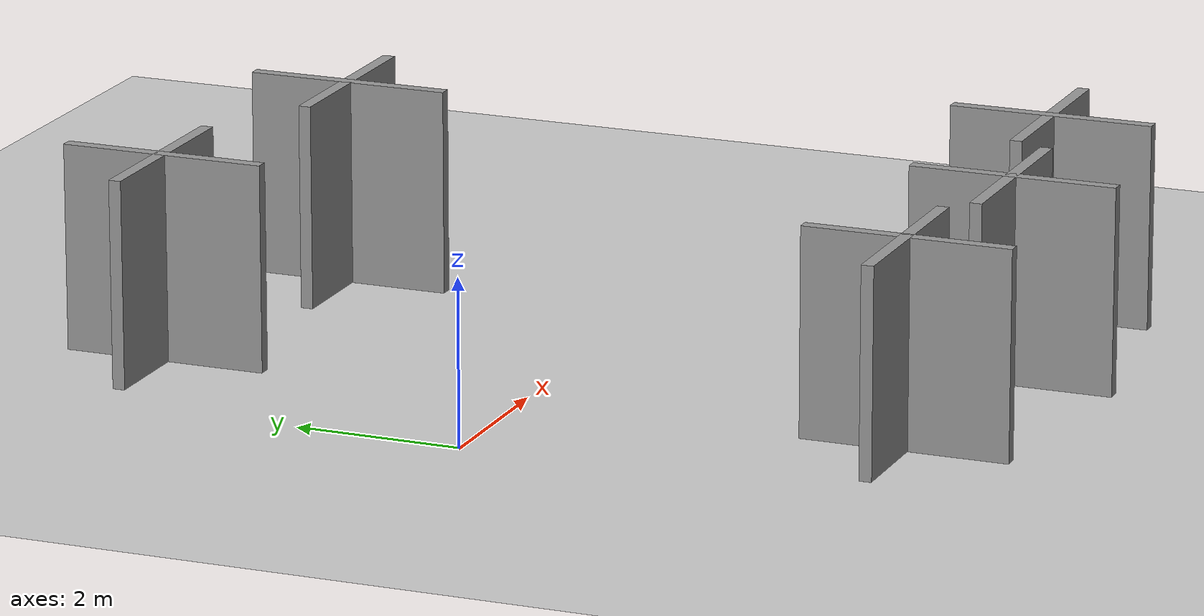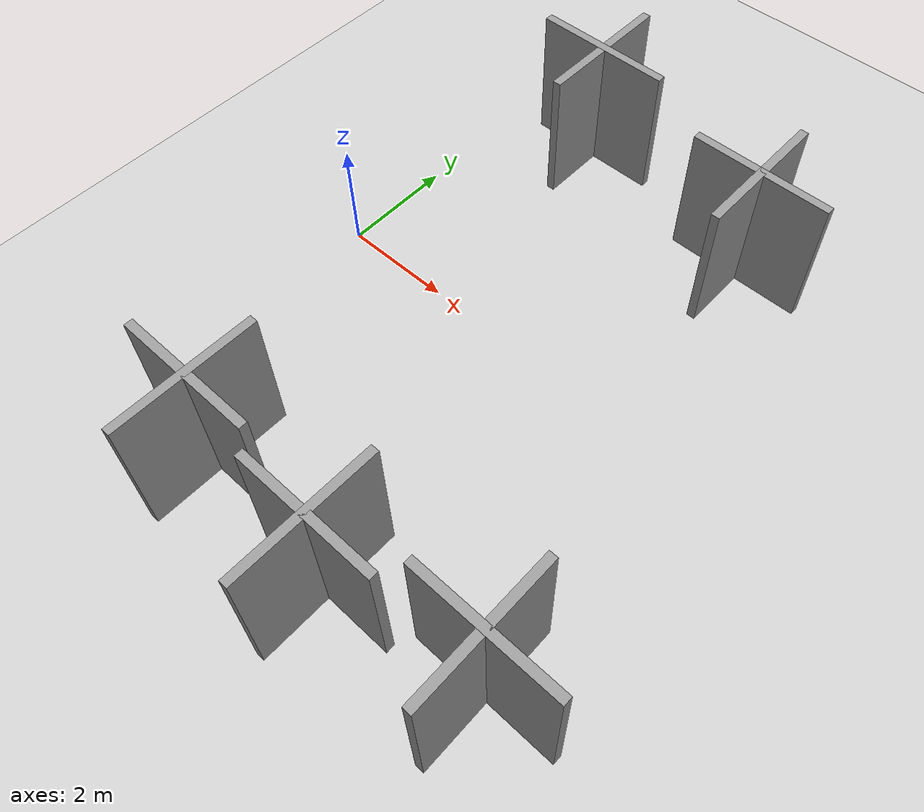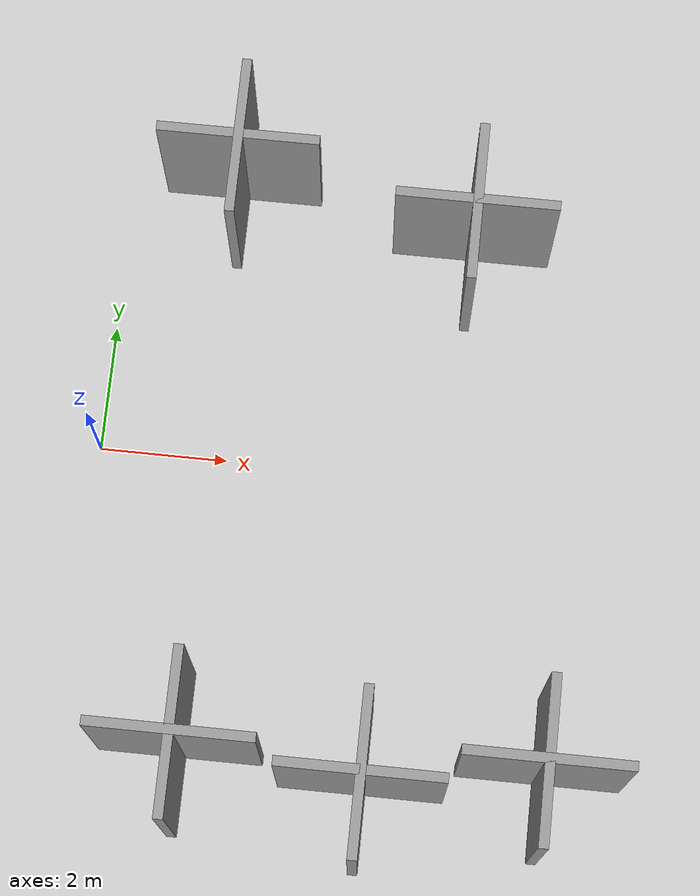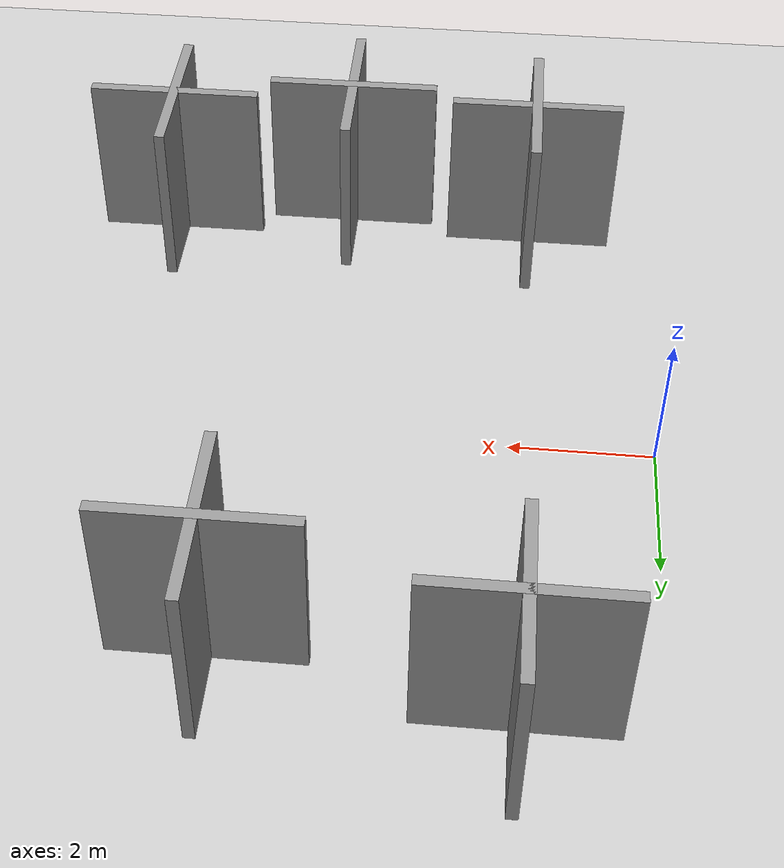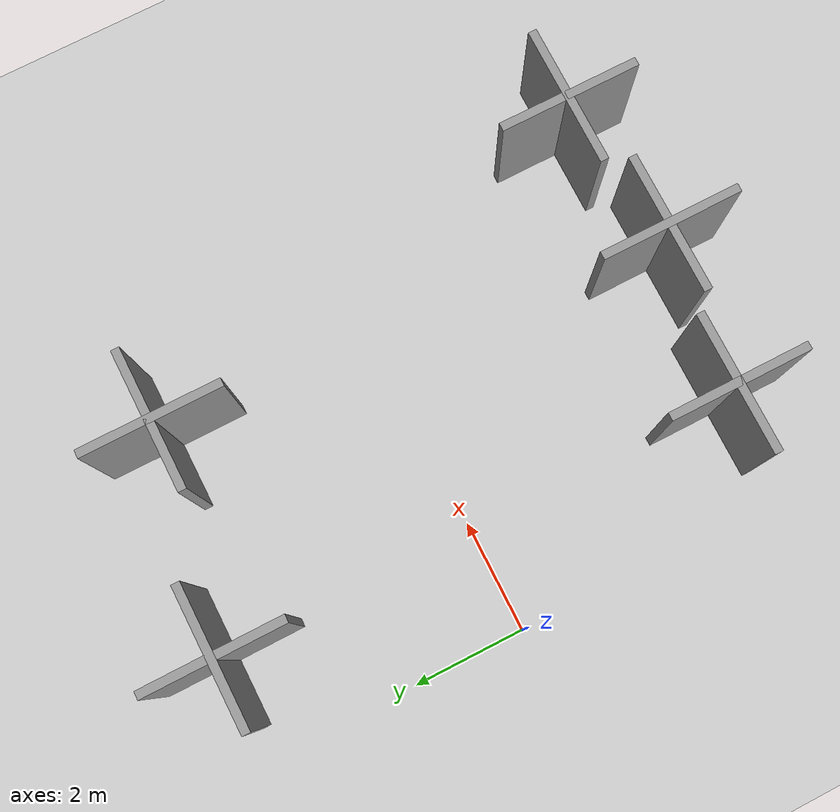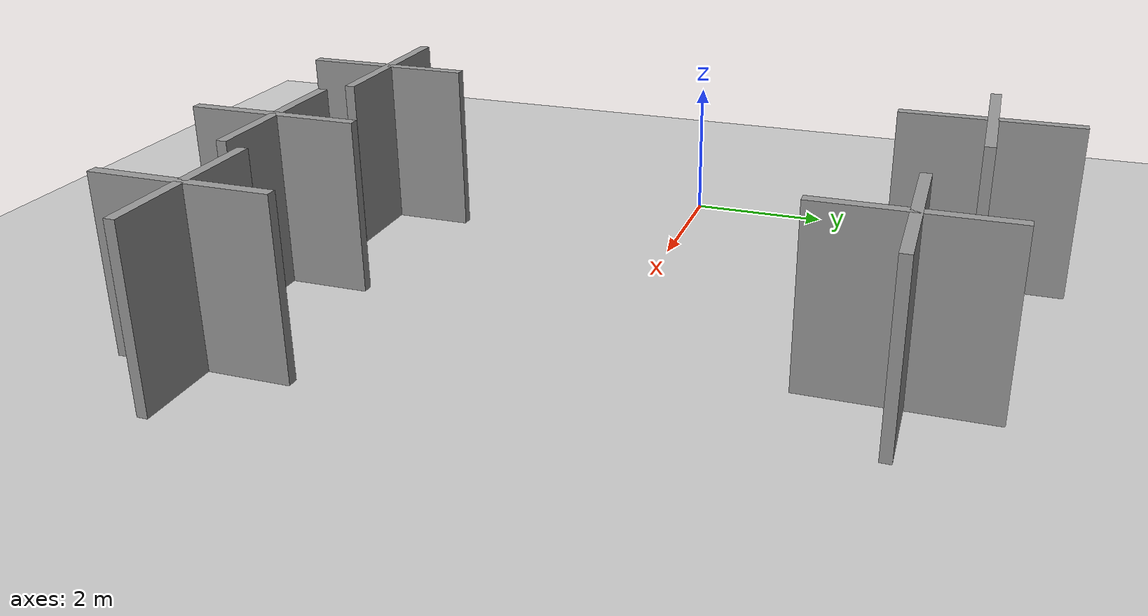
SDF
<sdf version="1.6">
 <world name="default">
  <light name="sun" type="directional">
   <pose>0 0 10 0 -0 0</pose>
   <diffuse>0.8 0.8 0.8 1</diffuse>
   <specular>0.2 0.2 0.2 1</specular>
   <attenuation>
    <range>1000</range>
    <constant>0.9</constant>
    <linear>0.01</linear>
    <quadratic>0.001</quadratic>
   </attenuation>
   <direction>-0.5 0.1 -0.9</direction>
  </light>
  <model name="ground_plane">
   <static>1</static>
   <link name="link">
    <collision name="collision">
     <geometry><plane><normal>0 0 1</normal><size>100 100</size></plane></geometry>
     <surface><friction><ode><mu>100</mu><mu2>50</mu2></ode></friction></surface>
    </collision>
    <visual name="visual">
     <cast_shadows>0</cast_shadows>
     <geometry><plane><normal>0 0 1</normal><size>100 100</size></plane></geometry>
     <material>
      <script><uri>file://media/materials/scripts/gazebo.material</uri><name>Gazebo/Grey</name></script>
     </material>
    </visual>
   </link>
  </model>
  <gravity>0 0 -9.8</gravity>
  <magnetic_field>6e-06 2.3e-05 -4.2e-05</magnetic_field>
  <atmosphere type="adiabatic"/>
  <physics name="default_physics" default="0" type="ode">
   <max_step_size>0.001</max_step_size>
   <real_time_factor>1</real_time_factor>
   <real_time_update_rate>1000</real_time_update_rate>
  </physics>
  <scene><ambient>0.4 0.4 0.4 1</ambient><background>0.7 0.7 0.7 1</background><shadows>1</shadows></scene>
  <audio><device>default</device></audio>
  <spherical_coordinates>
   <surface_model>EARTH_WGS84</surface_model>
   <latitude_deg>0</latitude_deg>
   <longitude_deg>0</longitude_deg>
   <elevation>0</elevation>
   <heading_deg>0</heading_deg>
  </spherical_coordinates>
  <model name="ten_number">
   <pose>5.50893 3.77277 0 0 -0 0</pose>
   <link name="Wall_26">
    <collision name="Wall_26_Collision">
     <geometry><box><size>2.5 0.15 2.5</size></box></geometry>
     <pose>0 0 1.25 0 -0 0</pose>
    </collision>
    <visual name="Wall_26_Visual">
     <pose>0 0 1.25 0 -0 0</pose>
     <geometry><box><size>2.5 0.15 2.5</size></box></geometry>
     <material>
      <script><uri>file://media/materials/scripts/gazebo.material</uri><name>Gazebo/Grey</name></script>
      <ambient>1 1 1 1</ambient>
     </material>
     <meta><layer>0</layer></meta>
    </visual>
    <pose>0 0.025001 0 0 -0 0</pose>
   </link>
   <link name="Wall_28">
    <collision name="Wall_28_Collision">
     <geometry><box><size>2.5 0.15 2.5</size></box></geometry>
     <pose>0 0 1.25 0 -0 0</pose>
    </collision>
    <visual name="Wall_28_Visual">
     <pose>0 0 1.25 0 -0 0</pose>
     <geometry><box><size>2.5 0.15 2.5</size></box></geometry>
     <material>
      <script><uri>file://media/materials/scripts/gazebo.material</uri><name>Gazebo/Grey</name></script>
      <ambient>1 1 1 1</ambient>
     </material>
     <meta><layer>0</layer></meta>
    </visual>
    <pose>0.005 0 0 0 -0 -1.5708</pose>
   </link>
   <static>1</static>
  </model>
  <model name="ten_number_0">
   <pose>1.78537 4.47021 0 0 -0 0</pose>
   <link name="Wall_26">
    <collision name="Wall_26_Collision">
     <geometry><box><size>2.5 0.15 2.5</size></box></geometry>
     <pose>0 0 1.25 0 -0 0</pose>
    </collision>
    <visual name="Wall_26_Visual">
     <pose>0 0 1.25 0 -0 0</pose>
     <geometry><box><size>2.5 0.15 2.5</size></box></geometry>
     <material>
      <script><uri>file://media/materials/scripts/gazebo.material</uri><name>Gazebo/Grey</name></script>
      <ambient>1 1 1 1</ambient>
     </material>
     <meta><layer>0</layer></meta>
    </visual>
    <pose>0 0.025001 0 0 -0 0</pose>
   </link>
   <link name="Wall_28">
    <collision name="Wall_28_Collision">
     <geometry><box><size>2.5 0.15 2.5</size></box></geometry>
     <pose>0 0 1.25 0 -0 0</pose>
    </collision>
    <visual name="Wall_28_Visual">
     <pose>0 0 1.25 0 -0 0</pose>
     <geometry><box><size>2.5 0.15 2.5</size></box></geometry>
     <material>
      <script><uri>file://media/materials/scripts/gazebo.material</uri><name>Gazebo/Grey</name></script>
      <ambient>1 1 1 1</ambient>
     </material>
     <meta><layer>0</layer></meta>
    </visual>
    <pose>0.005 0 0 0 -0 -1.5708</pose>
   </link>
   <static>1</static>
  </model>
  <model name="ten_number_1">
   <pose>4.59247 -4.95701 0 0 -0 0</pose>
   <link name="Wall_26">
    <collision name="Wall_26_Collision">
     <geometry><box><size>2.5 0.15 2.5</size></box></geometry>
     <pose>0 0 1.25 0 -0 0</pose>
    </collision>
    <visual name="Wall_26_Visual">
     <pose>0 0 1.25 0 -0 0</pose>
     <geometry><box><size>2.5 0.15 2.5</size></box></geometry>
     <material>
      <script><uri>file://media/materials/scripts/gazebo.material</uri><name>Gazebo/Grey</name></script>
      <ambient>1 1 1 1</ambient>
     </material>
     <meta><layer>0</layer></meta>
    </visual>
    <pose>0 0.025001 0 0 -0 0</pose>
   </link>
   <link name="Wall_28">
    <collision name="Wall_28_Collision">
     <geometry><box><size>2.5 0.15 2.5</size></box></geometry>
     <pose>0 0 1.25 0 -0 0</pose>
    </collision>
    <visual name="Wall_28_Visual">
     <pose>0 0 1.25 0 -0 0</pose>
     <geometry><box><size>2.5 0.15 2.5</size></box></geometry>
     <material>
      <script><uri>file://media/materials/scripts/gazebo.material</uri><name>Gazebo/Grey</name></script>
      <ambient>1 1 1 1</ambient>
     </material>
     <meta><layer>0</layer></meta>
    </visual>
    <pose>0.005 0 0 0 -0 -1.5708</pose>
   </link>
   <static>1</static>
  </model>
  <model name="ten_number_2">
   <pose>7.23479 -4.53044 0 0 -0 0</pose>
   <link name="Wall_26">
    <collision name="Wall_26_Collision">
     <geometry><box><size>2.5 0.15 2.5</size></box></geometry>
     <pose>0 0 1.25 0 -0 0</pose>
    </collision>
    <visual name="Wall_26_Visual">
     <pose>0 0 1.25 0 -0 0</pose>
     <geometry><box><size>2.5 0.15 2.5</size></box></geometry>
     <material>
      <script><uri>file://media/materials/scripts/gazebo.material</uri><name>Gazebo/Grey</name></script>
      <ambient>1 1 1 1</ambient>
     </material>
     <meta><layer>0</layer></meta>
    </visual>
    <pose>0 0.025001 0 0 -0 0</pose>
   </link>
   <link name="Wall_28">
    <collision name="Wall_28_Collision">
     <geometry><box><size>2.5 0.15 2.5</size></box></geometry>
     <pose>0 0 1.25 0 -0 0</pose>
    </collision>
    <visual name="Wall_28_Visual">
     <pose>0 0 1.25 0 -0 0</pose>
     <geometry><box><size>2.5 0.15 2.5</size></box></geometry>
     <material>
      <script><uri>file://media/materials/scripts/gazebo.material</uri><name>Gazebo/Grey</name></script>
      <ambient>1 1 1 1</ambient>
     </material>
     <meta><layer>0</layer></meta>
    </visual>
    <pose>0.005 0 0 0 -0 -1.5708</pose>
   </link>
   <static>1</static>
  </model>
  <model name="ten_number_3">
   <pose>1.83201 -4.6596 0 0 -0 0</pose>
   <link name="Wall_26">
    <collision name="Wall_26_Collision">
     <geometry><box><size>2.5 0.15 2.5</size></box></geometry>
     <pose>0 0 1.25 0 -0 0</pose>
    </collision>
    <visual name="Wall_26_Visual">
     <pose>0 0 1.25 0 -0 0</pose>
     <geometry><box><size>2.5 0.15 2.5</size></box></geometry>
     <material>
      <script><uri>file://media/materials/scripts/gazebo.material</uri><name>Gazebo/Grey</name></script>
      <ambient>1 1 1 1</ambient>
     </material>
     <meta><layer>0</layer></meta>
    </visual>
    <pose>0 0.025001 0 0 -0 0</pose>
   </link>
   <link name="Wall_28">
    <collision name="Wall_28_Collision">
     <geometry><box><size>2.5 0.15 2.5</size></box></geometry>
     <pose>0 0 1.25 0 -0 0</pose>
    </collision>
    <visual name="Wall_28_Visual">
     <pose>0 0 1.25 0 -0 0</pose>
     <geometry><box><size>2.5 0.15 2.5</size></box></geometry>
     <material>
      <script><uri>file://media/materials/scripts/gazebo.material</uri><name>Gazebo/Grey</name></script>
      <ambient>1 1 1 1</ambient>
     </material>
     <meta><layer>0</layer></meta>
    </visual>
    <pose>0.005 0 0 0 -0 -1.5708</pose>
   </link>
   <static>1</static>
  </model>
 </world>
</sdf>
